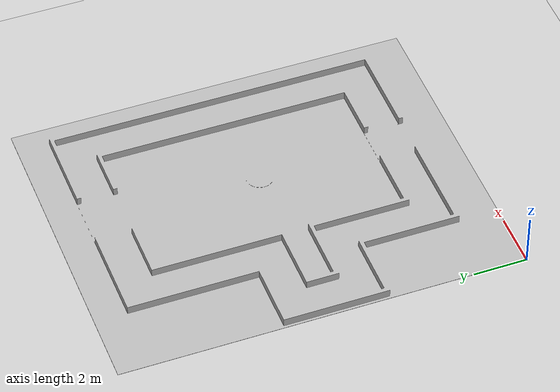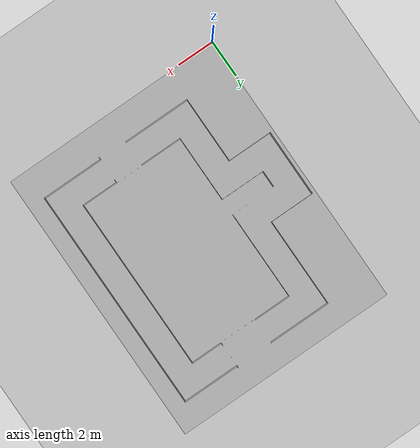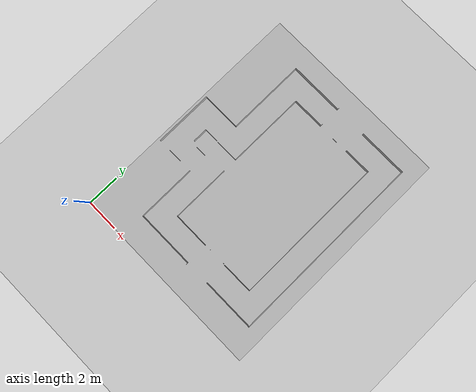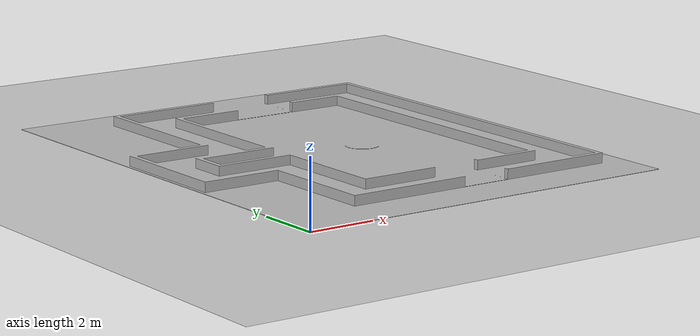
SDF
<sdf version="1.7">
 <world name="default">
  <light name="sun" type="directional">
   <pose>0 0 10 0 -0 0</pose>
   <diffuse>0.8 0.8 0.8 1</diffuse>
   <specular>0.2 0.2 0.2 1</specular>
   <attenuation>
    <range>1000</range>
    <constant>0.9</constant>
    <linear>0.01</linear>
    <quadratic>0.001</quadratic>
   </attenuation>
   <direction>-0.5 0.1 -0.9</direction>
   <spot><inner_angle>0</inner_angle><outer_angle>0</outer_angle><falloff>0</falloff></spot>
  </light>
  <model name="ground_plane">
   <static>1</static>
   <link name="link">
    <collision name="collision">
     <geometry><plane><normal>0 0 1</normal><size>100 100</size></plane></geometry>
     <surface>
      <contact><collide_bitmask>65535</collide_bitmask></contact>
      <friction><ode><mu>100</mu><mu2>50</mu2></ode></friction>
     </surface>
    </collision>
    <visual name="visual">
     <cast_shadows>0</cast_shadows>
     <geometry><plane><normal>0 0 1</normal><size>100 100</size></plane></geometry>
     <material>
      <script><uri>file://media/materials/scripts/gazebo.material</uri><name>Gazebo/Grey</name></script>
     </material>
    </visual>
   </link>
  </model>
  <gravity>0 0 -9.8</gravity>
  <magnetic_field>6e-06 2.3e-05 -4.2e-05</magnetic_field>
  <atmosphere type="adiabatic"/>
  <physics type="ode">
   <max_step_size>0.001</max_step_size>
   <real_time_factor>1</real_time_factor>
   <real_time_update_rate>1000</real_time_update_rate>
  </physics>
  <scene><ambient>0.4 0.4 0.4 1</ambient><background>0.7 0.7 0.7 1</background><shadows>1</shadows></scene>
  <audio><device>default</device></audio>
  <spherical_coordinates>
   <surface_model>EARTH_WGS84</surface_model>
   <latitude_deg>0</latitude_deg>
   <longitude_deg>0</longitude_deg>
   <elevation>0</elevation>
   <heading_deg>0</heading_deg>
  </spherical_coordinates>
  <model name="SHENGSAI2025_world">
   <static>1</static>
   <link name="link">
    <inertial>
     <mass>1.0402e+07</mass>
     <inertia>
      <ixx>3.97e+09</ixx>
      <ixy>2.0876e+07</ixy>
      <ixz>6.1323e+08</ixz>
      <iyy>9.0332e+09</iyy>
      <iyz>-2.6958e+08</iyz>
      <izz>5.839e+09</izz>
     </inertia>
    </inertial>
    <collision name="collision">
     <geometry><mesh><uri>model://SHENGSAI2025_world/meshes/SHENGSAI_2025.STL</uri></mesh></geometry>
    </collision>
    <visual name="visual">
     <geometry><mesh><uri>model://SHENGSAI2025_world/meshes/SHENGSAI_2025.STL</uri></mesh></geometry>
    </visual>
   </link>
   <pose>0 15 0 1.57 -0 0</pose>
  </model>
 </world>
</sdf>
